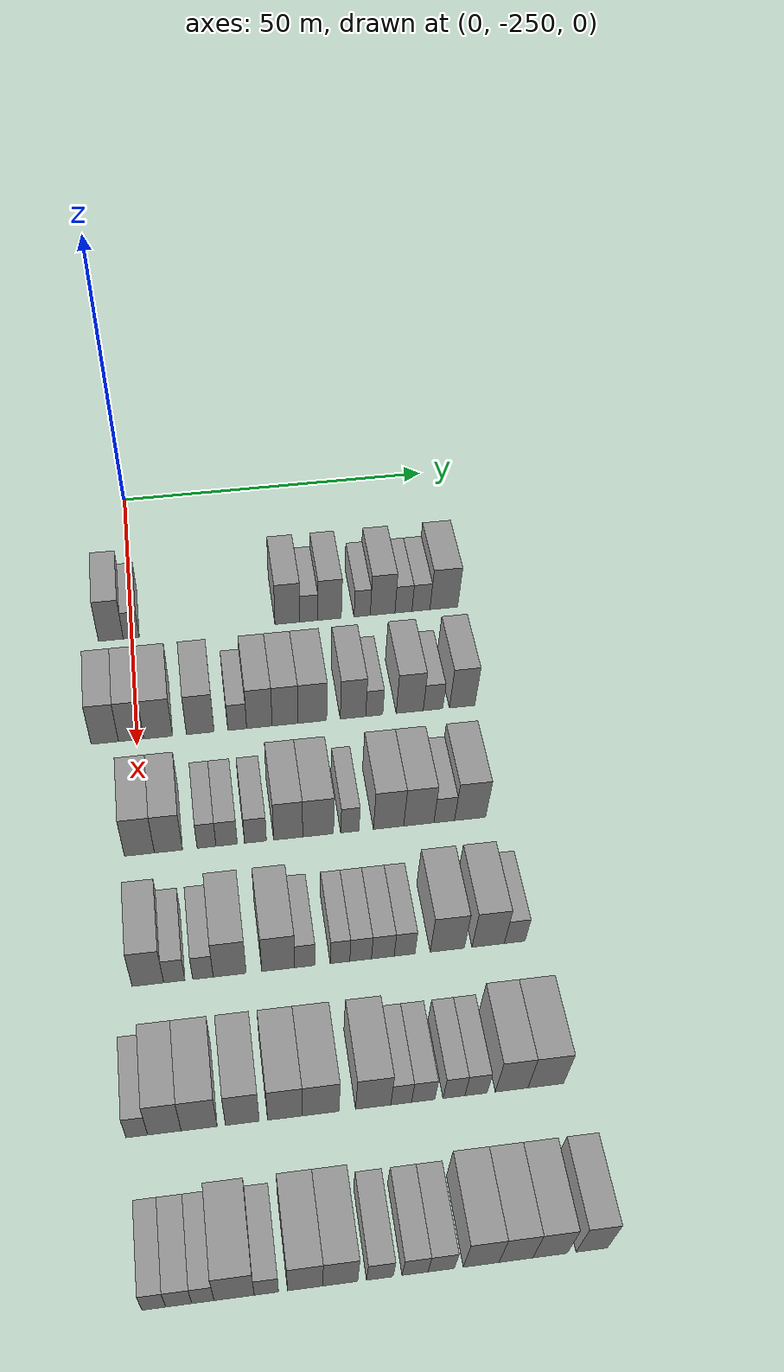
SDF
<sdf version="1.6">
 <world name="default">
  <model name="building_26">
   <static>1</static>
   <pose>25.0000 -253.1585 0 0.000000 0.000000 0.000000</pose>
   <link name="link">
    <pose>0 0 4.50 0 0 0</pose>
    <collision name="collision"><geometry><box><size>10.0000 3.7730 9.0000</size></box></geometry></collision>
    <visual name="visual">
     <cast_shadows>0</cast_shadows>
     <geometry><box><size>10.0000 3.7730 9.0000</size></box></geometry>
     <material>
      <script>
       <uri>model://grey_wall/materials/scripts</uri>
       <uri>model://grey_wall/materials/textures</uri>
       <name>vrc/grey_wall</name>
      </script>
     </material>
    </visual>
   </link>
  </model>
  <model name="building_27">
   <static>1</static>
   <pose>25.0000 -250.0536 0 0.000000 0.000000 0.000000</pose>
   <link name="link">
    <pose>0 0 3.00 0 0 0</pose>
    <collision name="collision"><geometry><box><size>10.0000 2.4368 6.0000</size></box></geometry></collision>
    <visual name="visual">
     <cast_shadows>0</cast_shadows>
     <geometry><box><size>10.0000 2.4368 6.0000</size></box></geometry>
     <material>
      <script>
       <uri>model://grey_wall/materials/scripts</uri>
       <uri>model://grey_wall/materials/textures</uri>
       <name>vrc/grey_wall</name>
      </script>
     </material>
    </visual>
   </link>
  </model>
  <model name="building_28">
   <static>1</static>
   <pose>25.0000 -226.0626 0 0.000000 0.000000 0.000000</pose>
   <link name="link">
    <pose>0 0 4.50 0 0 0</pose>
    <collision name="collision"><geometry><box><size>10.0000 3.8484 9.0000</size></box></geometry></collision>
    <visual name="visual">
     <cast_shadows>0</cast_shadows>
     <geometry><box><size>10.0000 3.8484 9.0000</size></box></geometry>
     <material>
      <script>
       <uri>model://grey_wall/materials/scripts</uri>
       <uri>model://grey_wall/materials/textures</uri>
       <name>vrc/grey_wall</name>
      </script>
     </material>
    </visual>
   </link>
  </model>
  <model name="building_29">
   <static>1</static>
   <pose>25.0000 -222.7465 0 0.000000 0.000000 0.000000</pose>
   <link name="link">
    <pose>0 0 3.00 0 0 0</pose>
    <collision name="collision"><geometry><box><size>10.0000 2.7838 6.0000</size></box></geometry></collision>
    <visual name="visual">
     <cast_shadows>0</cast_shadows>
     <geometry><box><size>10.0000 2.7838 6.0000</size></box></geometry>
     <material>
      <script>
       <uri>model://grey_wall/materials/scripts</uri>
       <uri>model://grey_wall/materials/textures</uri>
       <name>vrc/grey_wall</name>
      </script>
     </material>
    </visual>
   </link>
  </model>
  <model name="building_30">
   <static>1</static>
   <pose>25.0000 -219.5177 0 0.000000 0.000000 0.000000</pose>
   <link name="link">
    <pose>0 0 4.50 0 0 0</pose>
    <collision name="collision"><geometry><box><size>10.0000 3.6739 9.0000</size></box></geometry></collision>
    <visual name="visual">
     <cast_shadows>0</cast_shadows>
     <geometry><box><size>10.0000 3.6739 9.0000</size></box></geometry>
     <material>
      <script>
       <uri>model://grey_wall/materials/scripts</uri>
       <uri>model://grey_wall/materials/textures</uri>
       <name>vrc/grey_wall</name>
      </script>
     </material>
    </visual>
   </link>
  </model>
  <model name="building_31">
   <static>1</static>
   <pose>25.0000 -214.4132 0 0.000000 0.000000 0.000000</pose>
   <link name="link">
    <pose>0 0 3.00 0 0 0</pose>
    <collision name="collision"><geometry><box><size>10.0000 2.5351 6.0000</size></box></geometry></collision>
    <visual name="visual">
     <cast_shadows>0</cast_shadows>
     <geometry><box><size>10.0000 2.5351 6.0000</size></box></geometry>
     <material>
      <script>
       <uri>model://grey_wall/materials/scripts</uri>
       <uri>model://grey_wall/materials/textures</uri>
       <name>vrc/grey_wall</name>
      </script>
     </material>
    </visual>
   </link>
  </model>
  <model name="building_32">
   <static>1</static>
   <pose>25.0000 -211.2157 0 0.000000 0.000000 0.000000</pose>
   <link name="link">
    <pose>0 0 4.50 0 0 0</pose>
    <collision name="collision"><geometry><box><size>10.0000 3.8600 9.0000</size></box></geometry></collision>
    <visual name="visual">
     <cast_shadows>0</cast_shadows>
     <geometry><box><size>10.0000 3.8600 9.0000</size></box></geometry>
     <material>
      <script>
       <uri>model://grey_wall/materials/scripts</uri>
       <uri>model://grey_wall/materials/textures</uri>
       <name>vrc/grey_wall</name>
      </script>
     </material>
    </visual>
   </link>
  </model>
  <model name="building_33">
   <static>1</static>
   <pose>25.0000 -207.9436 0 0.000000 0.000000 0.000000</pose>
   <link name="link">
    <pose>0 0 3.00 0 0 0</pose>
    <collision name="collision"><geometry><box><size>10.0000 2.6841 6.0000</size></box></geometry></collision>
    <visual name="visual">
     <cast_shadows>0</cast_shadows>
     <geometry><box><size>10.0000 2.6841 6.0000</size></box></geometry>
     <material>
      <script>
       <uri>model://grey_wall/materials/scripts</uri>
       <uri>model://grey_wall/materials/textures</uri>
       <name>vrc/grey_wall</name>
      </script>
     </material>
    </visual>
   </link>
  </model>
  <model name="building_34">
   <static>1</static>
   <pose>25.0000 -205.1876 0 0.000000 0.000000 0.000000</pose>
   <link name="link">
    <pose>0 0 3.00 0 0 0</pose>
    <collision name="collision"><geometry><box><size>10.0000 2.8280 6.0000</size></box></geometry></collision>
    <visual name="visual">
     <cast_shadows>0</cast_shadows>
     <geometry><box><size>10.0000 2.8280 6.0000</size></box></geometry>
     <material>
      <script>
       <uri>model://grey_wall/materials/scripts</uri>
       <uri>model://grey_wall/materials/textures</uri>
       <name>vrc/grey_wall</name>
      </script>
     </material>
    </visual>
   </link>
  </model>
  <model name="building_35">
   <static>1</static>
   <pose>25.0000 -201.5887 0 0.000000 0.000000 0.000000</pose>
   <link name="link">
    <pose>0 0 4.50 0 0 0</pose>
    <collision name="collision"><geometry><box><size>10.0000 4.3697 9.0000</size></box></geometry></collision>
    <visual name="visual">
     <cast_shadows>0</cast_shadows>
     <geometry><box><size>10.0000 4.3697 9.0000</size></box></geometry>
     <material>
      <script>
       <uri>model://grey_wall/materials/scripts</uri>
       <uri>model://grey_wall/materials/textures</uri>
       <name>vrc/grey_wall</name>
      </script>
     </material>
    </visual>
   </link>
  </model>
  <model name="building_194">
   <static>1</static>
   <pose>44.0000 -254.6480 0 0.000000 0.000000 0.000000</pose>
   <link name="link">
    <pose>0 0 4.50 0 0 0</pose>
    <collision name="collision"><geometry><box><size>10.0000 3.9203 9.0000</size></box></geometry></collision>
    <visual name="visual">
     <cast_shadows>0</cast_shadows>
     <geometry><box><size>10.0000 3.9203 9.0000</size></box></geometry>
     <material>
      <script>
       <uri>model://grey_wall/materials/scripts</uri>
       <uri>model://grey_wall/materials/textures</uri>
       <name>vrc/grey_wall</name>
      </script>
     </material>
    </visual>
   </link>
  </model>
  <model name="building_195">
   <static>1</static>
   <pose>44.0000 -250.8637 0 0.000000 0.000000 0.000000</pose>
   <link name="link">
    <pose>0 0 4.50 0 0 0</pose>
    <collision name="collision"><geometry><box><size>10.0000 3.6484 9.0000</size></box></geometry></collision>
    <visual name="visual">
     <cast_shadows>0</cast_shadows>
     <geometry><box><size>10.0000 3.6484 9.0000</size></box></geometry>
     <material>
      <script>
       <uri>model://grey_wall/materials/scripts</uri>
       <uri>model://grey_wall/materials/textures</uri>
       <name>vrc/grey_wall</name>
      </script>
     </material>
    </visual>
   </link>
  </model>
  <model name="building_196">
   <static>1</static>
   <pose>44.0000 -246.9723 0 0.000000 0.000000 0.000000</pose>
   <link name="link">
    <pose>0 0 4.50 0 0 0</pose>
    <collision name="collision"><geometry><box><size>10.0000 4.1344 9.0000</size></box></geometry></collision>
    <visual name="visual">
     <cast_shadows>0</cast_shadows>
     <geometry><box><size>10.0000 4.1344 9.0000</size></box></geometry>
     <material>
      <script>
       <uri>model://grey_wall/materials/scripts</uri>
       <uri>model://grey_wall/materials/textures</uri>
       <name>vrc/grey_wall</name>
      </script>
     </material>
    </visual>
   </link>
  </model>
  <model name="building_197">
   <static>1</static>
   <pose>44.0000 -240.9035 0 0.000000 0.000000 0.000000</pose>
   <link name="link">
    <pose>0 0 4.50 0 0 0</pose>
    <collision name="collision"><geometry><box><size>10.0000 4.0032 9.0000</size></box></geometry></collision>
    <visual name="visual">
     <cast_shadows>0</cast_shadows>
     <geometry><box><size>10.0000 4.0032 9.0000</size></box></geometry>
     <material>
      <script>
       <uri>model://grey_wall/materials/scripts</uri>
       <uri>model://grey_wall/materials/textures</uri>
       <name>vrc/grey_wall</name>
      </script>
     </material>
    </visual>
   </link>
  </model>
  <model name="building_198">
   <static>1</static>
   <pose>44.0000 -235.5371 0 0.000000 0.000000 0.000000</pose>
   <link name="link">
    <pose>0 0 3.00 0 0 0</pose>
    <collision name="collision"><geometry><box><size>10.0000 2.7296 6.0000</size></box></geometry></collision>
    <visual name="visual">
     <cast_shadows>0</cast_shadows>
     <geometry><box><size>10.0000 2.7296 6.0000</size></box></geometry>
     <material>
      <script>
       <uri>model://grey_wall/materials/scripts</uri>
       <uri>model://grey_wall/materials/textures</uri>
       <name>vrc/grey_wall</name>
      </script>
     </material>
    </visual>
   </link>
  </model>
  <model name="building_199">
   <static>1</static>
   <pose>44.0000 -232.3139 0 0.000000 0.000000 0.000000</pose>
   <link name="link">
    <pose>0 0 4.50 0 0 0</pose>
    <collision name="collision"><geometry><box><size>10.0000 3.7168 9.0000</size></box></geometry></collision>
    <visual name="visual">
     <cast_shadows>0</cast_shadows>
     <geometry><box><size>10.0000 3.7168 9.0000</size></box></geometry>
     <material>
      <script>
       <uri>model://grey_wall/materials/scripts</uri>
       <uri>model://grey_wall/materials/textures</uri>
       <name>vrc/grey_wall</name>
      </script>
     </material>
    </visual>
   </link>
  </model>
  <model name="building_200">
   <static>1</static>
   <pose>44.0000 -228.5671 0 0.000000 0.000000 0.000000</pose>
   <link name="link">
    <pose>0 0 4.50 0 0 0</pose>
    <collision name="collision"><geometry><box><size>10.0000 3.7767 9.0000</size></box></geometry></collision>
    <visual name="visual">
     <cast_shadows>0</cast_shadows>
     <geometry><box><size>10.0000 3.7767 9.0000</size></box></geometry>
     <material>
      <script>
       <uri>model://grey_wall/materials/scripts</uri>
       <uri>model://grey_wall/materials/textures</uri>
       <name>vrc/grey_wall</name>
      </script>
     </material>
    </visual>
   </link>
  </model>
  <model name="building_201">
   <static>1</static>
   <pose>44.0000 -224.5776 0 0.000000 0.000000 0.000000</pose>
   <link name="link">
    <pose>0 0 4.50 0 0 0</pose>
    <collision name="collision"><geometry><box><size>10.0000 4.2024 9.0000</size></box></geometry></collision>
    <visual name="visual">
     <cast_shadows>0</cast_shadows>
     <geometry><box><size>10.0000 4.2024 9.0000</size></box></geometry>
     <material>
      <script>
       <uri>model://grey_wall/materials/scripts</uri>
       <uri>model://grey_wall/materials/textures</uri>
       <name>vrc/grey_wall</name>
      </script>
     </material>
    </visual>
   </link>
  </model>
  <model name="building_202">
   <static>1</static>
   <pose>44.0000 -218.6069 0 0.000000 0.000000 0.000000</pose>
   <link name="link">
    <pose>0 0 4.50 0 0 0</pose>
    <collision name="collision"><geometry><box><size>10.0000 3.7391 9.0000</size></box></geometry></collision>
    <visual name="visual">
     <cast_shadows>0</cast_shadows>
     <geometry><box><size>10.0000 3.7391 9.0000</size></box></geometry>
     <material>
      <script>
       <uri>model://grey_wall/materials/scripts</uri>
       <uri>model://grey_wall/materials/textures</uri>
       <name>vrc/grey_wall</name>
      </script>
     </material>
    </visual>
   </link>
  </model>
  <model name="building_203">
   <static>1</static>
   <pose>44.0000 -215.4786 0 0.000000 0.000000 0.000000</pose>
   <link name="link">
    <pose>0 0 3.00 0 0 0</pose>
    <collision name="collision"><geometry><box><size>10.0000 2.5176 6.0000</size></box></geometry></collision>
    <visual name="visual">
     <cast_shadows>0</cast_shadows>
     <geometry><box><size>10.0000 2.5176 6.0000</size></box></geometry>
     <material>
      <script>
       <uri>model://grey_wall/materials/scripts</uri>
       <uri>model://grey_wall/materials/textures</uri>
       <name>vrc/grey_wall</name>
      </script>
     </material>
    </visual>
   </link>
  </model>
  <model name="building_204">
   <static>1</static>
   <pose>44.0000 -210.2136 0 0.000000 0.000000 0.000000</pose>
   <link name="link">
    <pose>0 0 4.50 0 0 0</pose>
    <collision name="collision"><geometry><box><size>10.0000 4.0123 9.0000</size></box></geometry></collision>
    <visual name="visual">
     <cast_shadows>0</cast_shadows>
     <geometry><box><size>10.0000 4.0123 9.0000</size></box></geometry>
     <material>
      <script>
       <uri>model://grey_wall/materials/scripts</uri>
       <uri>model://grey_wall/materials/textures</uri>
       <name>vrc/grey_wall</name>
      </script>
     </material>
    </visual>
   </link>
  </model>
  <model name="building_205">
   <static>1</static>
   <pose>44.0000 -206.7617 0 0.000000 0.000000 0.000000</pose>
   <link name="link">
    <pose>0 0 3.00 0 0 0</pose>
    <collision name="collision"><geometry><box><size>10.0000 2.8915 6.0000</size></box></geometry></collision>
    <visual name="visual">
     <cast_shadows>0</cast_shadows>
     <geometry><box><size>10.0000 2.8915 6.0000</size></box></geometry>
     <material>
      <script>
       <uri>model://grey_wall/materials/scripts</uri>
       <uri>model://grey_wall/materials/textures</uri>
       <name>vrc/grey_wall</name>
      </script>
     </material>
    </visual>
   </link>
  </model>
  <model name="building_206">
   <static>1</static>
   <pose>44.0000 -202.4226 0 0.000000 0.000000 0.000000</pose>
   <link name="link">
    <pose>0 0 4.50 0 0 0</pose>
    <collision name="collision"><geometry><box><size>10.0000 3.7867 9.0000</size></box></geometry></collision>
    <visual name="visual">
     <cast_shadows>0</cast_shadows>
     <geometry><box><size>10.0000 3.7867 9.0000</size></box></geometry>
     <material>
      <script>
       <uri>model://grey_wall/materials/scripts</uri>
       <uri>model://grey_wall/materials/textures</uri>
       <name>vrc/grey_wall</name>
      </script>
     </material>
    </visual>
   </link>
  </model>
  <model name="building_371">
   <static>1</static>
   <pose>63.0000 -250.5494 0 0.000000 0.000000 0.000000</pose>
   <link name="link">
    <pose>0 0 4.50 0 0 0</pose>
    <collision name="collision"><geometry><box><size>10.0000 4.0449 9.0000</size></box></geometry></collision>
    <visual name="visual">
     <cast_shadows>0</cast_shadows>
     <geometry><box><size>10.0000 4.0449 9.0000</size></box></geometry>
     <material>
      <script>
       <uri>model://grey_wall/materials/scripts</uri>
       <uri>model://grey_wall/materials/textures</uri>
       <name>vrc/grey_wall</name>
      </script>
     </material>
    </visual>
   </link>
  </model>
  <model name="building_372">
   <static>1</static>
   <pose>63.0000 -246.6254 0 0.000000 0.000000 0.000000</pose>
   <link name="link">
    <pose>0 0 4.50 0 0 0</pose>
    <collision name="collision"><geometry><box><size>10.0000 3.8032 9.0000</size></box></geometry></collision>
    <visual name="visual">
     <cast_shadows>0</cast_shadows>
     <geometry><box><size>10.0000 3.8032 9.0000</size></box></geometry>
     <material>
      <script>
       <uri>model://grey_wall/materials/scripts</uri>
       <uri>model://grey_wall/materials/textures</uri>
       <name>vrc/grey_wall</name>
      </script>
     </material>
    </visual>
   </link>
  </model>
  <model name="building_373">
   <static>1</static>
   <pose>63.0000 -241.4439 0 0.000000 0.000000 0.000000</pose>
   <link name="link">
    <pose>0 0 3.00 0 0 0</pose>
    <collision name="collision"><geometry><box><size>10.0000 2.5596 6.0000</size></box></geometry></collision>
    <visual name="visual">
     <cast_shadows>0</cast_shadows>
     <geometry><box><size>10.0000 2.5596 6.0000</size></box></geometry>
     <material>
      <script>
       <uri>model://grey_wall/materials/scripts</uri>
       <uri>model://grey_wall/materials/textures</uri>
       <name>vrc/grey_wall</name>
      </script>
     </material>
    </visual>
   </link>
  </model>
  <model name="building_374">
   <static>1</static>
   <pose>63.0000 -238.7126 0 0.000000 0.000000 0.000000</pose>
   <link name="link">
    <pose>0 0 3.00 0 0 0</pose>
    <collision name="collision"><geometry><box><size>10.0000 2.9031 6.0000</size></box></geometry></collision>
    <visual name="visual">
     <cast_shadows>0</cast_shadows>
     <geometry><box><size>10.0000 2.9031 6.0000</size></box></geometry>
     <material>
      <script>
       <uri>model://grey_wall/materials/scripts</uri>
       <uri>model://grey_wall/materials/textures</uri>
       <name>vrc/grey_wall</name>
      </script>
     </material>
    </visual>
   </link>
  </model>
  <model name="building_375">
   <static>1</static>
   <pose>63.0000 -234.7707 0 0.000000 0.000000 0.000000</pose>
   <link name="link">
    <pose>0 0 3.00 0 0 0</pose>
    <collision name="collision"><geometry><box><size>10.0000 2.9807 6.0000</size></box></geometry></collision>
    <visual name="visual">
     <cast_shadows>0</cast_shadows>
     <geometry><box><size>10.0000 2.9807 6.0000</size></box></geometry>
     <material>
      <script>
       <uri>model://grey_wall/materials/scripts</uri>
       <uri>model://grey_wall/materials/textures</uri>
       <name>vrc/grey_wall</name>
      </script>
     </material>
    </visual>
   </link>
  </model>
  <model name="building_376">
   <static>1</static>
   <pose>63.0000 -230.2922 0 0.000000 0.000000 0.000000</pose>
   <link name="link">
    <pose>0 0 4.50 0 0 0</pose>
    <collision name="collision"><geometry><box><size>10.0000 3.9763 9.0000</size></box></geometry></collision>
    <visual name="visual">
     <cast_shadows>0</cast_shadows>
     <geometry><box><size>10.0000 3.9763 9.0000</size></box></geometry>
     <material>
      <script>
       <uri>model://grey_wall/materials/scripts</uri>
       <uri>model://grey_wall/materials/textures</uri>
       <name>vrc/grey_wall</name>
      </script>
     </material>
    </visual>
   </link>
  </model>
  <model name="building_377">
   <static>1</static>
   <pose>63.0000 -226.1805 0 0.000000 0.000000 0.000000</pose>
   <link name="link">
    <pose>0 0 4.50 0 0 0</pose>
    <collision name="collision"><geometry><box><size>10.0000 4.2471 9.0000</size></box></geometry></collision>
    <visual name="visual">
     <cast_shadows>0</cast_shadows>
     <geometry><box><size>10.0000 4.2471 9.0000</size></box></geometry>
     <material>
      <script>
       <uri>model://grey_wall/materials/scripts</uri>
       <uri>model://grey_wall/materials/textures</uri>
       <name>vrc/grey_wall</name>
      </script>
     </material>
    </visual>
   </link>
  </model>
  <model name="building_378">
   <static>1</static>
   <pose>63.0000 -221.7925 0 0.000000 0.000000 0.000000</pose>
   <link name="link">
    <pose>0 0 3.00 0 0 0</pose>
    <collision name="collision"><geometry><box><size>10.0000 2.5290 6.0000</size></box></geometry></collision>
    <visual name="visual">
     <cast_shadows>0</cast_shadows>
     <geometry><box><size>10.0000 2.5290 6.0000</size></box></geometry>
     <material>
      <script>
       <uri>model://grey_wall/materials/scripts</uri>
       <uri>model://grey_wall/materials/textures</uri>
       <name>vrc/grey_wall</name>
      </script>
     </material>
    </visual>
   </link>
  </model>
  <model name="building_379">
   <static>1</static>
   <pose>63.0000 -216.4206 0 0.000000 0.000000 0.000000</pose>
   <link name="link">
    <pose>0 0 4.50 0 0 0</pose>
    <collision name="collision"><geometry><box><size>10.0000 4.2148 9.0000</size></box></geometry></collision>
    <visual name="visual">
     <cast_shadows>0</cast_shadows>
     <geometry><box><size>10.0000 4.2148 9.0000</size></box></geometry>
     <material>
      <script>
       <uri>model://grey_wall/materials/scripts</uri>
       <uri>model://grey_wall/materials/textures</uri>
       <name>vrc/grey_wall</name>
      </script>
     </material>
    </visual>
   </link>
  </model>
  <model name="building_380">
   <static>1</static>
   <pose>63.0000 -212.2092 0 0.000000 0.000000 0.000000</pose>
   <link name="link">
    <pose>0 0 4.50 0 0 0</pose>
    <collision name="collision"><geometry><box><size>10.0000 4.2080 9.0000</size></box></geometry></collision>
    <visual name="visual">
     <cast_shadows>0</cast_shadows>
     <geometry><box><size>10.0000 4.2080 9.0000</size></box></geometry>
     <material>
      <script>
       <uri>model://grey_wall/materials/scripts</uri>
       <uri>model://grey_wall/materials/textures</uri>
       <name>vrc/grey_wall</name>
      </script>
     </material>
    </visual>
   </link>
  </model>
  <model name="building_381">
   <static>1</static>
   <pose>63.0000 -208.6643 0 0.000000 0.000000 0.000000</pose>
   <link name="link">
    <pose>0 0 3.00 0 0 0</pose>
    <collision name="collision"><geometry><box><size>10.0000 2.8818 6.0000</size></box></geometry></collision>
    <visual name="visual">
     <cast_shadows>0</cast_shadows>
     <geometry><box><size>10.0000 2.8818 6.0000</size></box></geometry>
     <material>
      <script>
       <uri>model://grey_wall/materials/scripts</uri>
       <uri>model://grey_wall/materials/textures</uri>
       <name>vrc/grey_wall</name>
      </script>
     </material>
    </visual>
   </link>
  </model>
  <model name="building_382">
   <static>1</static>
   <pose>63.0000 -205.0381 0 0.000000 0.000000 0.000000</pose>
   <link name="link">
    <pose>0 0 4.50 0 0 0</pose>
    <collision name="collision"><geometry><box><size>10.0000 4.3706 9.0000</size></box></geometry></collision>
    <visual name="visual">
     <cast_shadows>0</cast_shadows>
     <geometry><box><size>10.0000 4.3706 9.0000</size></box></geometry>
     <material>
      <script>
       <uri>model://grey_wall/materials/scripts</uri>
       <uri>model://grey_wall/materials/textures</uri>
       <name>vrc/grey_wall</name>
      </script>
     </material>
    </visual>
   </link>
  </model>
  <model name="building_545">
   <static>1</static>
   <pose>82.0000 -250.3482 0 0.000000 0.000000 0.000000</pose>
   <link name="link">
    <pose>0 0 4.50 0 0 0</pose>
    <collision name="collision"><geometry><box><size>10.0000 3.9987 9.0000</size></box></geometry></collision>
    <visual name="visual">
     <cast_shadows>0</cast_shadows>
     <geometry><box><size>10.0000 3.9987 9.0000</size></box></geometry>
     <material>
      <script>
       <uri>model://grey_wall/materials/scripts</uri>
       <uri>model://grey_wall/materials/textures</uri>
       <name>vrc/grey_wall</name>
      </script>
     </material>
    </visual>
   </link>
  </model>
  <model name="building_546">
   <static>1</static>
   <pose>82.0000 -247.0004 0 0.000000 0.000000 0.000000</pose>
   <link name="link">
    <pose>0 0 3.00 0 0 0</pose>
    <collision name="collision"><geometry><box><size>10.0000 2.6969 6.0000</size></box></geometry></collision>
    <visual name="visual">
     <cast_shadows>0</cast_shadows>
     <geometry><box><size>10.0000 2.6969 6.0000</size></box></geometry>
     <material>
      <script>
       <uri>model://grey_wall/materials/scripts</uri>
       <uri>model://grey_wall/materials/textures</uri>
       <name>vrc/grey_wall</name>
      </script>
     </material>
    </visual>
   </link>
  </model>
  <model name="building_547">
   <static>1</static>
   <pose>82.0000 -243.3511 0 0.000000 0.000000 0.000000</pose>
   <link name="link">
    <pose>0 0 3.00 0 0 0</pose>
    <collision name="collision"><geometry><box><size>10.0000 2.6016 6.0000</size></box></geometry></collision>
    <visual name="visual">
     <cast_shadows>0</cast_shadows>
     <geometry><box><size>10.0000 2.6016 6.0000</size></box></geometry>
     <material>
      <script>
       <uri>model://grey_wall/materials/scripts</uri>
       <uri>model://grey_wall/materials/textures</uri>
       <name>vrc/grey_wall</name>
      </script>
     </material>
    </visual>
   </link>
  </model>
  <model name="building_548">
   <static>1</static>
   <pose>82.0000 -239.9524 0 0.000000 0.000000 0.000000</pose>
   <link name="link">
    <pose>0 0 4.50 0 0 0</pose>
    <collision name="collision"><geometry><box><size>10.0000 4.1958 9.0000</size></box></geometry></collision>
    <visual name="visual">
     <cast_shadows>0</cast_shadows>
     <geometry><box><size>10.0000 4.1958 9.0000</size></box></geometry>
     <material>
      <script>
       <uri>model://grey_wall/materials/scripts</uri>
       <uri>model://grey_wall/materials/textures</uri>
       <name>vrc/grey_wall</name>
      </script>
     </material>
    </visual>
   </link>
  </model>
  <model name="building_549">
   <static>1</static>
   <pose>82.0000 -233.7447 0 0.000000 0.000000 0.000000</pose>
   <link name="link">
    <pose>0 0 4.50 0 0 0</pose>
    <collision name="collision"><geometry><box><size>10.0000 4.2197 9.0000</size></box></geometry></collision>
    <visual name="visual">
     <cast_shadows>0</cast_shadows>
     <geometry><box><size>10.0000 4.2197 9.0000</size></box></geometry>
     <material>
      <script>
       <uri>model://grey_wall/materials/scripts</uri>
       <uri>model://grey_wall/materials/textures</uri>
       <name>vrc/grey_wall</name>
      </script>
     </material>
    </visual>
   </link>
  </model>
  <model name="building_550">
   <static>1</static>
   <pose>82.0000 -230.3431 0 0.000000 0.000000 0.000000</pose>
   <link name="link">
    <pose>0 0 3.00 0 0 0</pose>
    <collision name="collision"><geometry><box><size>10.0000 2.5835 6.0000</size></box></geometry></collision>
    <visual name="visual">
     <cast_shadows>0</cast_shadows>
     <geometry><box><size>10.0000 2.5835 6.0000</size></box></geometry>
     <material>
      <script>
       <uri>model://grey_wall/materials/scripts</uri>
       <uri>model://grey_wall/materials/textures</uri>
       <name>vrc/grey_wall</name>
      </script>
     </material>
    </visual>
   </link>
  </model>
  <model name="building_551">
   <static>1</static>
   <pose>82.0000 -225.7896 0 0.000000 0.000000 0.000000</pose>
   <link name="link">
    <pose>0 0 3.00 0 0 0</pose>
    <collision name="collision"><geometry><box><size>10.0000 2.5235 6.0000</size></box></geometry></collision>
    <visual name="visual">
     <cast_shadows>0</cast_shadows>
     <geometry><box><size>10.0000 2.5235 6.0000</size></box></geometry>
     <material>
      <script>
       <uri>model://grey_wall/materials/scripts</uri>
       <uri>model://grey_wall/materials/textures</uri>
       <name>vrc/grey_wall</name>
      </script>
     </material>
    </visual>
   </link>
  </model>
  <model name="building_552">
   <static>1</static>
   <pose>82.0000 -223.1227 0 0.000000 0.000000 0.000000</pose>
   <link name="link">
    <pose>0 0 3.00 0 0 0</pose>
    <collision name="collision"><geometry><box><size>10.0000 2.8103 6.0000</size></box></geometry></collision>
    <visual name="visual">
     <cast_shadows>0</cast_shadows>
     <geometry><box><size>10.0000 2.8103 6.0000</size></box></geometry>
     <material>
      <script>
       <uri>model://grey_wall/materials/scripts</uri>
       <uri>model://grey_wall/materials/textures</uri>
       <name>vrc/grey_wall</name>
      </script>
     </material>
    </visual>
   </link>
  </model>
  <model name="building_553">
   <static>1</static>
   <pose>82.0000 -220.2389 0 0.000000 0.000000 0.000000</pose>
   <link name="link">
    <pose>0 0 3.00 0 0 0</pose>
    <collision name="collision"><geometry><box><size>10.0000 2.9573 6.0000</size></box></geometry></collision>
    <visual name="visual">
     <cast_shadows>0</cast_shadows>
     <geometry><box><size>10.0000 2.9573 6.0000</size></box></geometry>
     <material>
      <script>
       <uri>model://grey_wall/materials/scripts</uri>
       <uri>model://grey_wall/materials/textures</uri>
       <name>vrc/grey_wall</name>
      </script>
     </material>
    </visual>
   </link>
  </model>
  <model name="building_554">
   <static>1</static>
   <pose>82.0000 -217.4114 0 0.000000 0.000000 0.000000</pose>
   <link name="link">
    <pose>0 0 3.00 0 0 0</pose>
    <collision name="collision"><geometry><box><size>10.0000 2.6978 6.0000</size></box></geometry></collision>
    <visual name="visual">
     <cast_shadows>0</cast_shadows>
     <geometry><box><size>10.0000 2.6978 6.0000</size></box></geometry>
     <material>
      <script>
       <uri>model://grey_wall/materials/scripts</uri>
       <uri>model://grey_wall/materials/textures</uri>
       <name>vrc/grey_wall</name>
      </script>
     </material>
    </visual>
   </link>
  </model>
  <model name="building_555">
   <static>1</static>
   <pose>82.0000 -211.8280 0 0.000000 0.000000 0.000000</pose>
   <link name="link">
    <pose>0 0 4.50 0 0 0</pose>
    <collision name="collision"><geometry><box><size>10.0000 4.4690 9.0000</size></box></geometry></collision>
    <visual name="visual">
     <cast_shadows>0</cast_shadows>
     <geometry><box><size>10.0000 4.4690 9.0000</size></box></geometry>
     <material>
      <script>
       <uri>model://grey_wall/materials/scripts</uri>
       <uri>model://grey_wall/materials/textures</uri>
       <name>vrc/grey_wall</name>
      </script>
     </material>
    </visual>
   </link>
  </model>
  <model name="building_556">
   <static>1</static>
   <pose>82.0000 -206.4592 0 0.000000 0.000000 0.000000</pose>
   <link name="link">
    <pose>0 0 4.50 0 0 0</pose>
    <collision name="collision"><geometry><box><size>10.0000 4.2686 9.0000</size></box></geometry></collision>
    <visual name="visual">
     <cast_shadows>0</cast_shadows>
     <geometry><box><size>10.0000 4.2686 9.0000</size></box></geometry>
     <material>
      <script>
       <uri>model://grey_wall/materials/scripts</uri>
       <uri>model://grey_wall/materials/textures</uri>
       <name>vrc/grey_wall</name>
      </script>
     </material>
    </visual>
   </link>
  </model>
  <model name="building_557">
   <static>1</static>
   <pose>82.0000 -202.9683 0 0.000000 0.000000 0.000000</pose>
   <link name="link">
    <pose>0 0 3.00 0 0 0</pose>
    <collision name="collision"><geometry><box><size>10.0000 2.7130 6.0000</size></box></geometry></collision>
    <visual name="visual">
     <cast_shadows>0</cast_shadows>
     <geometry><box><size>10.0000 2.7130 6.0000</size></box></geometry>
     <material>
      <script>
       <uri>model://grey_wall/materials/scripts</uri>
       <uri>model://grey_wall/materials/textures</uri>
       <name>vrc/grey_wall</name>
      </script>
     </material>
    </visual>
   </link>
  </model>
  <model name="building_729">
   <static>1</static>
   <pose>101.0000 -252.5890 0 0.000000 0.000000 0.000000</pose>
   <link name="link">
    <pose>0 0 3.00 0 0 0</pose>
    <collision name="collision"><geometry><box><size>10.0000 2.5638 6.0000</size></box></geometry></collision>
    <visual name="visual">
     <cast_shadows>0</cast_shadows>
     <geometry><box><size>10.0000 2.5638 6.0000</size></box></geometry>
     <material>
      <script>
       <uri>model://grey_wall/materials/scripts</uri>
       <uri>model://grey_wall/materials/textures</uri>
       <name>vrc/grey_wall</name>
      </script>
     </material>
    </visual>
   </link>
  </model>
  <model name="building_730">
   <static>1</static>
   <pose>101.0000 -249.3374 0 0.000000 0.000000 0.000000</pose>
   <link name="link">
    <pose>0 0 4.50 0 0 0</pose>
    <collision name="collision"><geometry><box><size>10.0000 3.9395 9.0000</size></box></geometry></collision>
    <visual name="visual">
     <cast_shadows>0</cast_shadows>
     <geometry><box><size>10.0000 3.9395 9.0000</size></box></geometry>
     <material>
      <script>
       <uri>model://grey_wall/materials/scripts</uri>
       <uri>model://grey_wall/materials/textures</uri>
       <name>vrc/grey_wall</name>
      </script>
     </material>
    </visual>
   </link>
  </model>
  <model name="building_731">
   <static>1</static>
   <pose>101.0000 -245.2372 0 0.000000 0.000000 0.000000</pose>
   <link name="link">
    <pose>0 0 4.50 0 0 0</pose>
    <collision name="collision"><geometry><box><size>10.0000 4.2608 9.0000</size></box></geometry></collision>
    <visual name="visual">
     <cast_shadows>0</cast_shadows>
     <geometry><box><size>10.0000 4.2608 9.0000</size></box></geometry>
     <material>
      <script>
       <uri>model://grey_wall/materials/scripts</uri>
       <uri>model://grey_wall/materials/textures</uri>
       <name>vrc/grey_wall</name>
      </script>
     </material>
    </visual>
   </link>
  </model>
  <model name="building_732">
   <static>1</static>
   <pose>101.0000 -240.1029 0 0.000000 0.000000 0.000000</pose>
   <link name="link">
    <pose>0 0 4.50 0 0 0</pose>
    <collision name="collision"><geometry><box><size>10.0000 4.0078 9.0000</size></box></geometry></collision>
    <visual name="visual">
     <cast_shadows>0</cast_shadows>
     <geometry><box><size>10.0000 4.0078 9.0000</size></box></geometry>
     <material>
      <script>
       <uri>model://grey_wall/materials/scripts</uri>
       <uri>model://grey_wall/materials/textures</uri>
       <name>vrc/grey_wall</name>
      </script>
     </material>
    </visual>
   </link>
  </model>
  <model name="building_733">
   <static>1</static>
   <pose>101.0000 -235.0185 0 0.000000 0.000000 0.000000</pose>
   <link name="link">
    <pose>0 0 4.50 0 0 0</pose>
    <collision name="collision"><geometry><box><size>10.0000 4.1610 9.0000</size></box></geometry></collision>
    <visual name="visual">
     <cast_shadows>0</cast_shadows>
     <geometry><box><size>10.0000 4.1610 9.0000</size></box></geometry>
     <material>
      <script>
       <uri>model://grey_wall/materials/scripts</uri>
       <uri>model://grey_wall/materials/textures</uri>
       <name>vrc/grey_wall</name>
      </script>
     </material>
    </visual>
   </link>
  </model>
  <model name="building_734">
   <static>1</static>
   <pose>101.0000 -230.7456 0 0.000000 0.000000 0.000000</pose>
   <link name="link">
    <pose>0 0 4.50 0 0 0</pose>
    <collision name="collision"><geometry><box><size>10.0000 4.3849 9.0000</size></box></geometry></collision>
    <visual name="visual">
     <cast_shadows>0</cast_shadows>
     <geometry><box><size>10.0000 4.3849 9.0000</size></box></geometry>
     <material>
      <script>
       <uri>model://grey_wall/materials/scripts</uri>
       <uri>model://grey_wall/materials/textures</uri>
       <name>vrc/grey_wall</name>
      </script>
     </material>
    </visual>
   </link>
  </model>
  <model name="building_735">
   <static>1</static>
   <pose>101.0000 -224.4242 0 0.000000 0.000000 0.000000</pose>
   <link name="link">
    <pose>0 0 4.50 0 0 0</pose>
    <collision name="collision"><geometry><box><size>10.0000 4.2579 9.0000</size></box></geometry></collision>
    <visual name="visual">
     <cast_shadows>0</cast_shadows>
     <geometry><box><size>10.0000 4.2579 9.0000</size></box></geometry>
     <material>
      <script>
       <uri>model://grey_wall/materials/scripts</uri>
       <uri>model://grey_wall/materials/textures</uri>
       <name>vrc/grey_wall</name>
      </script>
     </material>
    </visual>
   </link>
  </model>
  <model name="building_736">
   <static>1</static>
   <pose>101.0000 -221.0333 0 0.000000 0.000000 0.000000</pose>
   <link name="link">
    <pose>0 0 3.00 0 0 0</pose>
    <collision name="collision"><geometry><box><size>10.0000 2.5239 6.0000</size></box></geometry></collision>
    <visual name="visual">
     <cast_shadows>0</cast_shadows>
     <geometry><box><size>10.0000 2.5239 6.0000</size></box></geometry>
     <material>
      <script>
       <uri>model://grey_wall/materials/scripts</uri>
       <uri>model://grey_wall/materials/textures</uri>
       <name>vrc/grey_wall</name>
      </script>
     </material>
    </visual>
   </link>
  </model>
  <model name="building_737">
   <static>1</static>
   <pose>101.0000 -218.3628 0 0.000000 0.000000 0.000000</pose>
   <link name="link">
    <pose>0 0 3.00 0 0 0</pose>
    <collision name="collision"><geometry><box><size>10.0000 2.8172 6.0000</size></box></geometry></collision>
    <visual name="visual">
     <cast_shadows>0</cast_shadows>
     <geometry><box><size>10.0000 2.8172 6.0000</size></box></geometry>
     <material>
      <script>
       <uri>model://grey_wall/materials/scripts</uri>
       <uri>model://grey_wall/materials/textures</uri>
       <name>vrc/grey_wall</name>
      </script>
     </material>
    </visual>
   </link>
  </model>
  <model name="building_738">
   <static>1</static>
   <pose>101.0000 -214.6171 0 0.000000 0.000000 0.000000</pose>
   <link name="link">
    <pose>0 0 3.00 0 0 0</pose>
    <collision name="collision"><geometry><box><size>10.0000 2.6740 6.0000</size></box></geometry></collision>
    <visual name="visual">
     <cast_shadows>0</cast_shadows>
     <geometry><box><size>10.0000 2.6740 6.0000</size></box></geometry>
     <material>
      <script>
       <uri>model://grey_wall/materials/scripts</uri>
       <uri>model://grey_wall/materials/textures</uri>
       <name>vrc/grey_wall</name>
      </script>
     </material>
    </visual>
   </link>
  </model>
  <model name="building_739">
   <static>1</static>
   <pose>101.0000 -211.9218 0 0.000000 0.000000 0.000000</pose>
   <link name="link">
    <pose>0 0 3.00 0 0 0</pose>
    <collision name="collision"><geometry><box><size>10.0000 2.7167 6.0000</size></box></geometry></collision>
    <visual name="visual">
     <cast_shadows>0</cast_shadows>
     <geometry><box><size>10.0000 2.7167 6.0000</size></box></geometry>
     <material>
      <script>
       <uri>model://grey_wall/materials/scripts</uri>
       <uri>model://grey_wall/materials/textures</uri>
       <name>vrc/grey_wall</name>
      </script>
     </material>
    </visual>
   </link>
  </model>
  <model name="building_740">
   <static>1</static>
   <pose>101.0000 -207.5569 0 0.000000 0.000000 0.000000</pose>
   <link name="link">
    <pose>0 0 4.50 0 0 0</pose>
    <collision name="collision"><geometry><box><size>10.0000 4.0132 9.0000</size></box></geometry></collision>
    <visual name="visual">
     <cast_shadows>0</cast_shadows>
     <geometry><box><size>10.0000 4.0132 9.0000</size></box></geometry>
     <material>
      <script>
       <uri>model://grey_wall/materials/scripts</uri>
       <uri>model://grey_wall/materials/textures</uri>
       <name>vrc/grey_wall</name>
      </script>
     </material>
    </visual>
   </link>
  </model>
  <model name="building_741">
   <static>1</static>
   <pose>101.0000 -203.3545 0 0.000000 0.000000 0.000000</pose>
   <link name="link">
    <pose>0 0 4.50 0 0 0</pose>
    <collision name="collision"><geometry><box><size>10.0000 4.3915 9.0000</size></box></geometry></collision>
    <visual name="visual">
     <cast_shadows>0</cast_shadows>
     <geometry><box><size>10.0000 4.3915 9.0000</size></box></geometry>
     <material>
      <script>
       <uri>model://grey_wall/materials/scripts</uri>
       <uri>model://grey_wall/materials/textures</uri>
       <name>vrc/grey_wall</name>
      </script>
     </material>
    </visual>
   </link>
  </model>
  <model name="building_907">
   <static>1</static>
   <pose>120.0000 -251.5728 0 0.000000 0.000000 0.000000</pose>
   <link name="link">
    <pose>0 0 3.00 0 0 0</pose>
    <collision name="collision"><geometry><box><size>10.0000 2.5895 6.0000</size></box></geometry></collision>
    <visual name="visual">
     <cast_shadows>0</cast_shadows>
     <geometry><box><size>10.0000 2.5895 6.0000</size></box></geometry>
     <material>
      <script>
       <uri>model://grey_wall/materials/scripts</uri>
       <uri>model://grey_wall/materials/textures</uri>
       <name>vrc/grey_wall</name>
      </script>
     </material>
    </visual>
   </link>
  </model>
  <model name="building_908">
   <static>1</static>
   <pose>120.0000 -248.8504 0 0.000000 0.000000 0.000000</pose>
   <link name="link">
    <pose>0 0 3.00 0 0 0</pose>
    <collision name="collision"><geometry><box><size>10.0000 2.8553 6.0000</size></box></geometry></collision>
    <visual name="visual">
     <cast_shadows>0</cast_shadows>
     <geometry><box><size>10.0000 2.8553 6.0000</size></box></geometry>
     <material>
      <script>
       <uri>model://grey_wall/materials/scripts</uri>
       <uri>model://grey_wall/materials/textures</uri>
       <name>vrc/grey_wall</name>
      </script>
     </material>
    </visual>
   </link>
  </model>
  <model name="building_909">
   <static>1</static>
   <pose>120.0000 -246.2065 0 0.000000 0.000000 0.000000</pose>
   <link name="link">
    <pose>0 0 3.00 0 0 0</pose>
    <collision name="collision"><geometry><box><size>10.0000 2.4325 6.0000</size></box></geometry></collision>
    <visual name="visual">
     <cast_shadows>0</cast_shadows>
     <geometry><box><size>10.0000 2.4325 6.0000</size></box></geometry>
     <material>
      <script>
       <uri>model://grey_wall/materials/scripts</uri>
       <uri>model://grey_wall/materials/textures</uri>
       <name>vrc/grey_wall</name>
      </script>
     </material>
    </visual>
   </link>
  </model>
  <model name="building_910">
   <static>1</static>
   <pose>120.0000 -242.7782 0 0.000000 0.000000 0.000000</pose>
   <link name="link">
    <pose>0 0 4.50 0 0 0</pose>
    <collision name="collision"><geometry><box><size>10.0000 4.4240 9.0000</size></box></geometry></collision>
    <visual name="visual">
     <cast_shadows>0</cast_shadows>
     <geometry><box><size>10.0000 4.4240 9.0000</size></box></geometry>
     <material>
      <script>
       <uri>model://grey_wall/materials/scripts</uri>
       <uri>model://grey_wall/materials/textures</uri>
       <name>vrc/grey_wall</name>
      </script>
     </material>
    </visual>
   </link>
  </model>
  <model name="building_911">
   <static>1</static>
   <pose>120.0000 -239.2299 0 0.000000 0.000000 0.000000</pose>
   <link name="link">
    <pose>0 0 3.00 0 0 0</pose>
    <collision name="collision"><geometry><box><size>10.0000 2.6727 6.0000</size></box></geometry></collision>
    <visual name="visual">
     <cast_shadows>0</cast_shadows>
     <geometry><box><size>10.0000 2.6727 6.0000</size></box></geometry>
     <material>
      <script>
       <uri>model://grey_wall/materials/scripts</uri>
       <uri>model://grey_wall/materials/textures</uri>
       <name>vrc/grey_wall</name>
      </script>
     </material>
    </visual>
   </link>
  </model>
  <model name="building_912">
   <static>1</static>
   <pose>120.0000 -234.9391 0 0.000000 0.000000 0.000000</pose>
   <link name="link">
    <pose>0 0 4.50 0 0 0</pose>
    <collision name="collision"><geometry><box><size>10.0000 3.9089 9.0000</size></box></geometry></collision>
    <visual name="visual">
     <cast_shadows>0</cast_shadows>
     <geometry><box><size>10.0000 3.9089 9.0000</size></box></geometry>
     <material>
      <script>
       <uri>model://grey_wall/materials/scripts</uri>
       <uri>model://grey_wall/materials/textures</uri>
       <name>vrc/grey_wall</name>
      </script>
     </material>
    </visual>
   </link>
  </model>
  <model name="building_913">
   <static>1</static>
   <pose>120.0000 -231.0409 0 0.000000 0.000000 0.000000</pose>
   <link name="link">
    <pose>0 0 4.50 0 0 0</pose>
    <collision name="collision"><geometry><box><size>10.0000 3.8876 9.0000</size></box></geometry></collision>
    <visual name="visual">
     <cast_shadows>0</cast_shadows>
     <geometry><box><size>10.0000 3.8876 9.0000</size></box></geometry>
     <material>
      <script>
       <uri>model://grey_wall/materials/scripts</uri>
       <uri>model://grey_wall/materials/textures</uri>
       <name>vrc/grey_wall</name>
      </script>
     </material>
    </visual>
   </link>
  </model>
  <model name="building_914">
   <static>1</static>
   <pose>120.0000 -226.6091 0 0.000000 0.000000 0.000000</pose>
   <link name="link">
    <pose>0 0 3.00 0 0 0</pose>
    <collision name="collision"><geometry><box><size>10.0000 2.9760 6.0000</size></box></geometry></collision>
    <visual name="visual">
     <cast_shadows>0</cast_shadows>
     <geometry><box><size>10.0000 2.9760 6.0000</size></box></geometry>
     <material>
      <script>
       <uri>model://grey_wall/materials/scripts</uri>
       <uri>model://grey_wall/materials/textures</uri>
       <name>vrc/grey_wall</name>
      </script>
     </material>
    </visual>
   </link>
  </model>
  <model name="building_915">
   <static>1</static>
   <pose>120.0000 -222.6587 0 0.000000 0.000000 0.000000</pose>
   <link name="link">
    <pose>0 0 3.00 0 0 0</pose>
    <collision name="collision"><geometry><box><size>10.0000 2.9248 6.0000</size></box></geometry></collision>
    <visual name="visual">
     <cast_shadows>0</cast_shadows>
     <geometry><box><size>10.0000 2.9248 6.0000</size></box></geometry>
     <material>
      <script>
       <uri>model://grey_wall/materials/scripts</uri>
       <uri>model://grey_wall/materials/textures</uri>
       <name>vrc/grey_wall</name>
      </script>
     </material>
    </visual>
   </link>
  </model>
  <model name="building_916">
   <static>1</static>
   <pose>120.0000 -219.7122 0 0.000000 0.000000 0.000000</pose>
   <link name="link">
    <pose>0 0 3.00 0 0 0</pose>
    <collision name="collision"><geometry><box><size>10.0000 2.9683 6.0000</size></box></geometry></collision>
    <visual name="visual">
     <cast_shadows>0</cast_shadows>
     <geometry><box><size>10.0000 2.9683 6.0000</size></box></geometry>
     <material>
      <script>
       <uri>model://grey_wall/materials/scripts</uri>
       <uri>model://grey_wall/materials/textures</uri>
       <name>vrc/grey_wall</name>
      </script>
     </material>
    </visual>
   </link>
  </model>
  <model name="building_917">
   <static>1</static>
   <pose>120.0000 -215.2003 0 0.000000 0.000000 0.000000</pose>
   <link name="link">
    <pose>0 0 4.50 0 0 0</pose>
    <collision name="collision"><geometry><box><size>10.0000 4.0554 9.0000</size></box></geometry></collision>
    <visual name="visual">
     <cast_shadows>0</cast_shadows>
     <geometry><box><size>10.0000 4.0554 9.0000</size></box></geometry>
     <material>
      <script>
       <uri>model://grey_wall/materials/scripts</uri>
       <uri>model://grey_wall/materials/textures</uri>
       <name>vrc/grey_wall</name>
      </script>
     </material>
    </visual>
   </link>
  </model>
  <model name="building_918">
   <static>1</static>
   <pose>120.0000 -211.2502 0 0.000000 0.000000 0.000000</pose>
   <link name="link">
    <pose>0 0 4.50 0 0 0</pose>
    <collision name="collision"><geometry><box><size>10.0000 3.8449 9.0000</size></box></geometry></collision>
    <visual name="visual">
     <cast_shadows>0</cast_shadows>
     <geometry><box><size>10.0000 3.8449 9.0000</size></box></geometry>
     <material>
      <script>
       <uri>model://grey_wall/materials/scripts</uri>
       <uri>model://grey_wall/materials/textures</uri>
       <name>vrc/grey_wall</name>
      </script>
     </material>
    </visual>
   </link>
  </model>
  <model name="building_919">
   <static>1</static>
   <pose>120.0000 -207.3571 0 0.000000 0.000000 0.000000</pose>
   <link name="link">
    <pose>0 0 4.50 0 0 0</pose>
    <collision name="collision"><geometry><box><size>10.0000 3.9413 9.0000</size></box></geometry></collision>
    <visual name="visual">
     <cast_shadows>0</cast_shadows>
     <geometry><box><size>10.0000 3.9413 9.0000</size></box></geometry>
     <material>
      <script>
       <uri>model://grey_wall/materials/scripts</uri>
       <uri>model://grey_wall/materials/textures</uri>
       <name>vrc/grey_wall</name>
      </script>
     </material>
    </visual>
   </link>
  </model>
  <model name="building_920">
   <static>1</static>
   <pose>120.0000 -202.5797 0 0.000000 0.000000 0.000000</pose>
   <link name="link">
    <pose>0 0 4.50 0 0 0</pose>
    <collision name="collision"><geometry><box><size>10.0000 3.6135 9.0000</size></box></geometry></collision>
    <visual name="visual">
     <cast_shadows>0</cast_shadows>
     <geometry><box><size>10.0000 3.6135 9.0000</size></box></geometry>
     <material>
      <script>
       <uri>model://grey_wall/materials/scripts</uri>
       <uri>model://grey_wall/materials/textures</uri>
       <name>vrc/grey_wall</name>
      </script>
     </material>
    </visual>
   </link>
  </model>
 </world>
</sdf>
